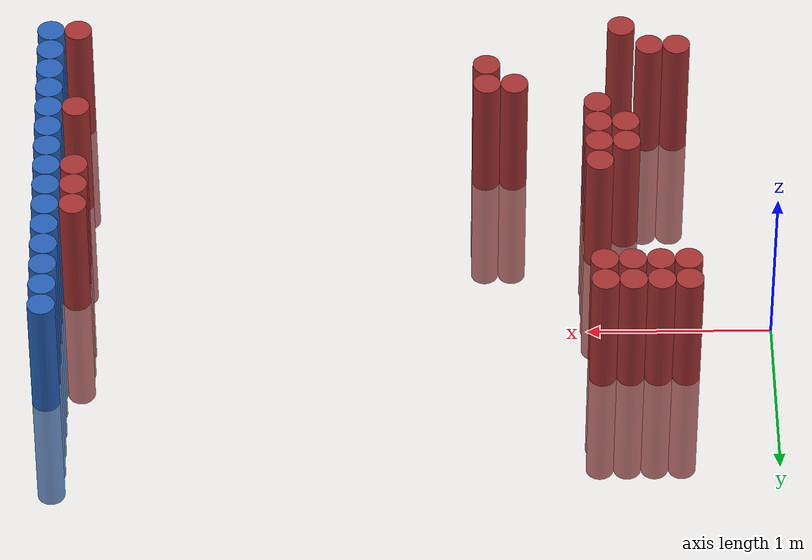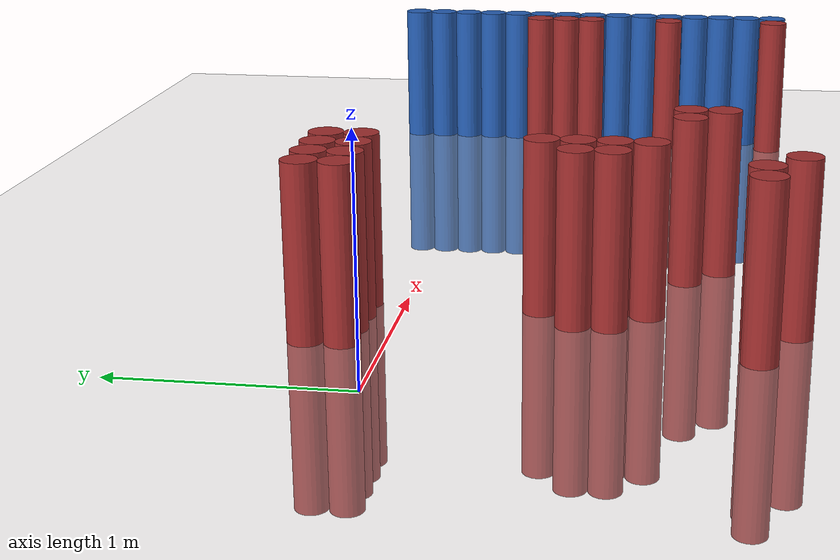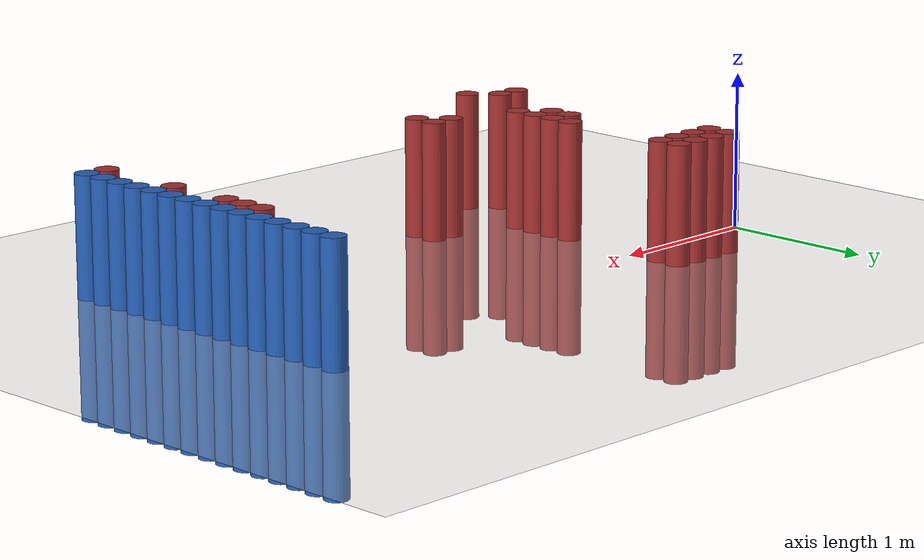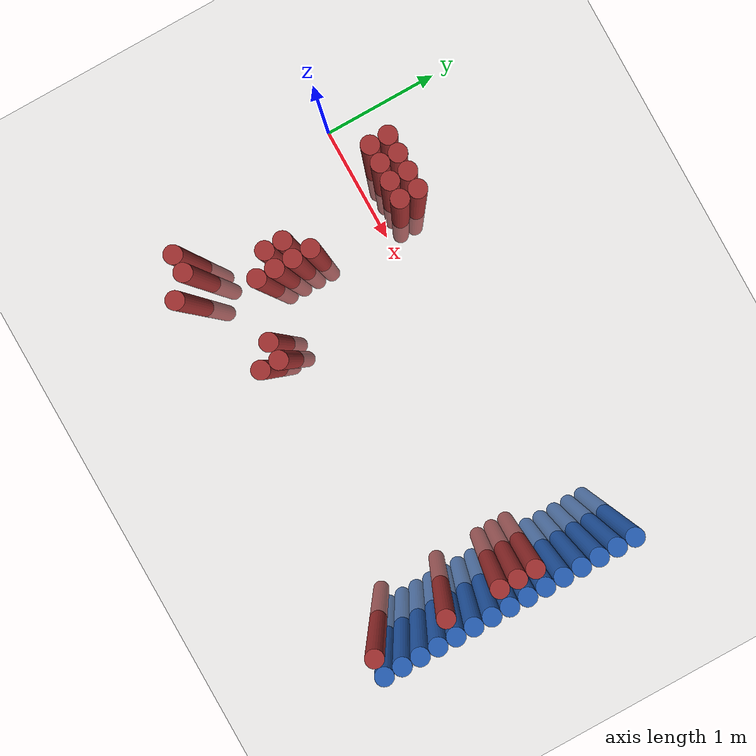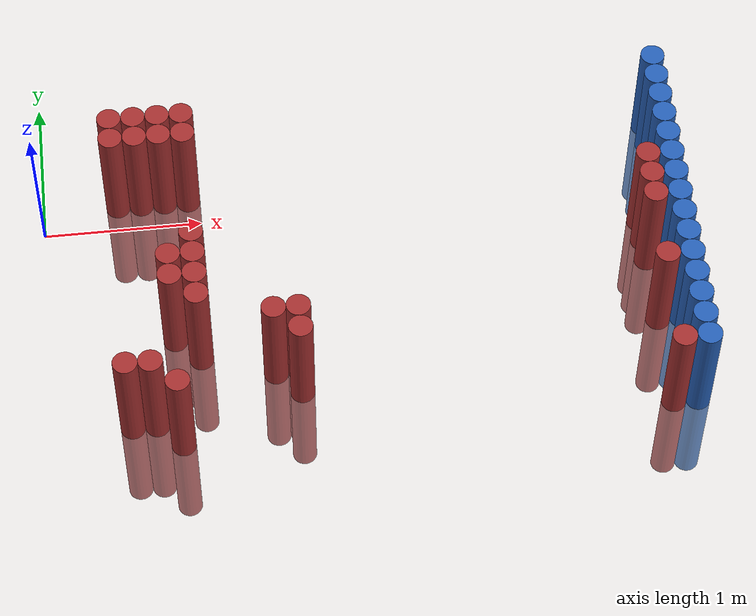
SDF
<sdf version="1.6">
 <world name="default">
  <model name="ground_plane">
   <static>1</static>
   <link name="link">
    <collision name="collision">
     <geometry><plane><normal>0 0 1</normal><size>100 100</size></plane></geometry>
     <surface><friction><ode><mu>100</mu><mu2>50</mu2></ode></friction></surface>
    </collision>
    <visual name="visual">
     <cast_shadows>0</cast_shadows>
     <geometry><plane><normal>0 0 1</normal><size>100 100</size></plane></geometry>
     <material>
      <script><uri>file://media/materials/scripts/gazebo.material</uri><name>Gazebo/Grey</name></script>
     </material>
    </visual>
   </link>
  </model>
  <model name="unit_cylinder_92">
   <static>1</static>
   <pose>3.925000 -1.625000 0.000000 0.000000 0.000000 0.000000</pose>
   <link name="link">
    <inertial>
     <mass>1</mass>
     <inertia><ixx>0.145833</ixx><ixy>0</ixy><ixz>0</ixz><iyy>0.145833</iyy><iyz>0</iyz><izz>0.125</izz></inertia>
    </inertial>
    <collision name="collision">
     <geometry><cylinder><radius>0.075000</radius><length>1.5</length></cylinder></geometry>
    </collision>
    <visual name="visual">
     <geometry><cylinder><radius>0.075000</radius><length>1.5</length></cylinder></geometry>
     <material>
      <ambient>0.152000 0.379000 0.720000 1</ambient>
      <diffuse>0.152000 0.379000 0.720000 1</diffuse>
     </material>
     <material>
      <script><name>Gazebo/Grey</name><uri>file://media/materials/scripts/gazebo.material</uri></script>
     </material>
    </visual>
   </link>
  </model>
  <model name="unit_cylinder_94">
   <static>1</static>
   <pose>3.925000 -1.475000 0.000000 0.000000 0.000000 0.000000</pose>
   <link name="link">
    <inertial>
     <mass>1</mass>
     <inertia><ixx>0.145833</ixx><ixy>0</ixy><ixz>0</ixz><iyy>0.145833</iyy><iyz>0</iyz><izz>0.125</izz></inertia>
    </inertial>
    <collision name="collision">
     <geometry><cylinder><radius>0.075000</radius><length>1.5</length></cylinder></geometry>
    </collision>
    <visual name="visual">
     <geometry><cylinder><radius>0.075000</radius><length>1.5</length></cylinder></geometry>
     <material>
      <ambient>0.152000 0.379000 0.720000 1</ambient>
      <diffuse>0.152000 0.379000 0.720000 1</diffuse>
     </material>
     <material>
      <script><name>Gazebo/Grey</name><uri>file://media/materials/scripts/gazebo.material</uri></script>
     </material>
    </visual>
   </link>
  </model>
  <model name="unit_cylinder_96">
   <static>1</static>
   <pose>3.925000 -1.325000 0.000000 0.000000 0.000000 0.000000</pose>
   <link name="link">
    <inertial>
     <mass>1</mass>
     <inertia><ixx>0.145833</ixx><ixy>0</ixy><ixz>0</ixz><iyy>0.145833</iyy><iyz>0</iyz><izz>0.125</izz></inertia>
    </inertial>
    <collision name="collision">
     <geometry><cylinder><radius>0.075000</radius><length>1.5</length></cylinder></geometry>
    </collision>
    <visual name="visual">
     <geometry><cylinder><radius>0.075000</radius><length>1.5</length></cylinder></geometry>
     <material>
      <ambient>0.152000 0.379000 0.720000 1</ambient>
      <diffuse>0.152000 0.379000 0.720000 1</diffuse>
     </material>
     <material>
      <script><name>Gazebo/Grey</name><uri>file://media/materials/scripts/gazebo.material</uri></script>
     </material>
    </visual>
   </link>
  </model>
  <model name="unit_cylinder_98">
   <static>1</static>
   <pose>3.925000 -1.175000 0.000000 0.000000 0.000000 0.000000</pose>
   <link name="link">
    <inertial>
     <mass>1</mass>
     <inertia><ixx>0.145833</ixx><ixy>0</ixy><ixz>0</ixz><iyy>0.145833</iyy><iyz>0</iyz><izz>0.125</izz></inertia>
    </inertial>
    <collision name="collision">
     <geometry><cylinder><radius>0.075000</radius><length>1.5</length></cylinder></geometry>
    </collision>
    <visual name="visual">
     <geometry><cylinder><radius>0.075000</radius><length>1.5</length></cylinder></geometry>
     <material>
      <ambient>0.152000 0.379000 0.720000 1</ambient>
      <diffuse>0.152000 0.379000 0.720000 1</diffuse>
     </material>
     <material>
      <script><name>Gazebo/Grey</name><uri>file://media/materials/scripts/gazebo.material</uri></script>
     </material>
    </visual>
   </link>
  </model>
  <model name="unit_cylinder_100">
   <static>1</static>
   <pose>3.925000 -1.025000 0.000000 0.000000 0.000000 0.000000</pose>
   <link name="link">
    <inertial>
     <mass>1</mass>
     <inertia><ixx>0.145833</ixx><ixy>0</ixy><ixz>0</ixz><iyy>0.145833</iyy><iyz>0</iyz><izz>0.125</izz></inertia>
    </inertial>
    <collision name="collision">
     <geometry><cylinder><radius>0.075000</radius><length>1.5</length></cylinder></geometry>
    </collision>
    <visual name="visual">
     <geometry><cylinder><radius>0.075000</radius><length>1.5</length></cylinder></geometry>
     <material>
      <ambient>0.152000 0.379000 0.720000 1</ambient>
      <diffuse>0.152000 0.379000 0.720000 1</diffuse>
     </material>
     <material>
      <script><name>Gazebo/Grey</name><uri>file://media/materials/scripts/gazebo.material</uri></script>
     </material>
    </visual>
   </link>
  </model>
  <model name="unit_cylinder_102">
   <static>1</static>
   <pose>3.925000 -0.875000 0.000000 0.000000 0.000000 0.000000</pose>
   <link name="link">
    <inertial>
     <mass>1</mass>
     <inertia><ixx>0.145833</ixx><ixy>0</ixy><ixz>0</ixz><iyy>0.145833</iyy><iyz>0</iyz><izz>0.125</izz></inertia>
    </inertial>
    <collision name="collision">
     <geometry><cylinder><radius>0.075000</radius><length>1.5</length></cylinder></geometry>
    </collision>
    <visual name="visual">
     <geometry><cylinder><radius>0.075000</radius><length>1.5</length></cylinder></geometry>
     <material>
      <ambient>0.152000 0.379000 0.720000 1</ambient>
      <diffuse>0.152000 0.379000 0.720000 1</diffuse>
     </material>
     <material>
      <script><name>Gazebo/Grey</name><uri>file://media/materials/scripts/gazebo.material</uri></script>
     </material>
    </visual>
   </link>
  </model>
  <model name="unit_cylinder_104">
   <static>1</static>
   <pose>3.925000 -0.725000 0.000000 0.000000 0.000000 0.000000</pose>
   <link name="link">
    <inertial>
     <mass>1</mass>
     <inertia><ixx>0.145833</ixx><ixy>0</ixy><ixz>0</ixz><iyy>0.145833</iyy><iyz>0</iyz><izz>0.125</izz></inertia>
    </inertial>
    <collision name="collision">
     <geometry><cylinder><radius>0.075000</radius><length>1.5</length></cylinder></geometry>
    </collision>
    <visual name="visual">
     <geometry><cylinder><radius>0.075000</radius><length>1.5</length></cylinder></geometry>
     <material>
      <ambient>0.152000 0.379000 0.720000 1</ambient>
      <diffuse>0.152000 0.379000 0.720000 1</diffuse>
     </material>
     <material>
      <script><name>Gazebo/Grey</name><uri>file://media/materials/scripts/gazebo.material</uri></script>
     </material>
    </visual>
   </link>
  </model>
  <model name="unit_cylinder_106">
   <static>1</static>
   <pose>3.925000 -0.575000 0.000000 0.000000 0.000000 0.000000</pose>
   <link name="link">
    <inertial>
     <mass>1</mass>
     <inertia><ixx>0.145833</ixx><ixy>0</ixy><ixz>0</ixz><iyy>0.145833</iyy><iyz>0</iyz><izz>0.125</izz></inertia>
    </inertial>
    <collision name="collision">
     <geometry><cylinder><radius>0.075000</radius><length>1.5</length></cylinder></geometry>
    </collision>
    <visual name="visual">
     <geometry><cylinder><radius>0.075000</radius><length>1.5</length></cylinder></geometry>
     <material>
      <ambient>0.152000 0.379000 0.720000 1</ambient>
      <diffuse>0.152000 0.379000 0.720000 1</diffuse>
     </material>
     <material>
      <script><name>Gazebo/Grey</name><uri>file://media/materials/scripts/gazebo.material</uri></script>
     </material>
    </visual>
   </link>
  </model>
  <model name="unit_cylinder_108">
   <static>1</static>
   <pose>3.925000 -0.425000 0.000000 0.000000 0.000000 0.000000</pose>
   <link name="link">
    <inertial>
     <mass>1</mass>
     <inertia><ixx>0.145833</ixx><ixy>0</ixy><ixz>0</ixz><iyy>0.145833</iyy><iyz>0</iyz><izz>0.125</izz></inertia>
    </inertial>
    <collision name="collision">
     <geometry><cylinder><radius>0.075000</radius><length>1.5</length></cylinder></geometry>
    </collision>
    <visual name="visual">
     <geometry><cylinder><radius>0.075000</radius><length>1.5</length></cylinder></geometry>
     <material>
      <ambient>0.152000 0.379000 0.720000 1</ambient>
      <diffuse>0.152000 0.379000 0.720000 1</diffuse>
     </material>
     <material>
      <script><name>Gazebo/Grey</name><uri>file://media/materials/scripts/gazebo.material</uri></script>
     </material>
    </visual>
   </link>
  </model>
  <model name="unit_cylinder_110">
   <static>1</static>
   <pose>3.925000 -0.275000 0.000000 0.000000 0.000000 0.000000</pose>
   <link name="link">
    <inertial>
     <mass>1</mass>
     <inertia><ixx>0.145833</ixx><ixy>0</ixy><ixz>0</ixz><iyy>0.145833</iyy><iyz>0</iyz><izz>0.125</izz></inertia>
    </inertial>
    <collision name="collision">
     <geometry><cylinder><radius>0.075000</radius><length>1.5</length></cylinder></geometry>
    </collision>
    <visual name="visual">
     <geometry><cylinder><radius>0.075000</radius><length>1.5</length></cylinder></geometry>
     <material>
      <ambient>0.152000 0.379000 0.720000 1</ambient>
      <diffuse>0.152000 0.379000 0.720000 1</diffuse>
     </material>
     <material>
      <script><name>Gazebo/Grey</name><uri>file://media/materials/scripts/gazebo.material</uri></script>
     </material>
    </visual>
   </link>
  </model>
  <model name="unit_cylinder_112">
   <static>1</static>
   <pose>3.925000 -0.125000 0.000000 0.000000 0.000000 0.000000</pose>
   <link name="link">
    <inertial>
     <mass>1</mass>
     <inertia><ixx>0.145833</ixx><ixy>0</ixy><ixz>0</ixz><iyy>0.145833</iyy><iyz>0</iyz><izz>0.125</izz></inertia>
    </inertial>
    <collision name="collision">
     <geometry><cylinder><radius>0.075000</radius><length>1.5</length></cylinder></geometry>
    </collision>
    <visual name="visual">
     <geometry><cylinder><radius>0.075000</radius><length>1.5</length></cylinder></geometry>
     <material>
      <ambient>0.152000 0.379000 0.720000 1</ambient>
      <diffuse>0.152000 0.379000 0.720000 1</diffuse>
     </material>
     <material>
      <script><name>Gazebo/Grey</name><uri>file://media/materials/scripts/gazebo.material</uri></script>
     </material>
    </visual>
   </link>
  </model>
  <model name="unit_cylinder_114">
   <static>1</static>
   <pose>3.925000 0.025000 0.000000 0.000000 0.000000 0.000000</pose>
   <link name="link">
    <inertial>
     <mass>1</mass>
     <inertia><ixx>0.145833</ixx><ixy>0</ixy><ixz>0</ixz><iyy>0.145833</iyy><iyz>0</iyz><izz>0.125</izz></inertia>
    </inertial>
    <collision name="collision">
     <geometry><cylinder><radius>0.075000</radius><length>1.5</length></cylinder></geometry>
    </collision>
    <visual name="visual">
     <geometry><cylinder><radius>0.075000</radius><length>1.5</length></cylinder></geometry>
     <material>
      <ambient>0.152000 0.379000 0.720000 1</ambient>
      <diffuse>0.152000 0.379000 0.720000 1</diffuse>
     </material>
     <material>
      <script><name>Gazebo/Grey</name><uri>file://media/materials/scripts/gazebo.material</uri></script>
     </material>
    </visual>
   </link>
  </model>
  <model name="unit_cylinder_116">
   <static>1</static>
   <pose>3.925000 0.175000 0.000000 0.000000 0.000000 0.000000</pose>
   <link name="link">
    <inertial>
     <mass>1</mass>
     <inertia><ixx>0.145833</ixx><ixy>0</ixy><ixz>0</ixz><iyy>0.145833</iyy><iyz>0</iyz><izz>0.125</izz></inertia>
    </inertial>
    <collision name="collision">
     <geometry><cylinder><radius>0.075000</radius><length>1.5</length></cylinder></geometry>
    </collision>
    <visual name="visual">
     <geometry><cylinder><radius>0.075000</radius><length>1.5</length></cylinder></geometry>
     <material>
      <ambient>0.152000 0.379000 0.720000 1</ambient>
      <diffuse>0.152000 0.379000 0.720000 1</diffuse>
     </material>
     <material>
      <script><name>Gazebo/Grey</name><uri>file://media/materials/scripts/gazebo.material</uri></script>
     </material>
    </visual>
   </link>
  </model>
  <model name="unit_cylinder_118">
   <static>1</static>
   <pose>3.925000 0.325000 0.000000 0.000000 0.000000 0.000000</pose>
   <link name="link">
    <inertial>
     <mass>1</mass>
     <inertia><ixx>0.145833</ixx><ixy>0</ixy><ixz>0</ixz><iyy>0.145833</iyy><iyz>0</iyz><izz>0.125</izz></inertia>
    </inertial>
    <collision name="collision">
     <geometry><cylinder><radius>0.075000</radius><length>1.5</length></cylinder></geometry>
    </collision>
    <visual name="visual">
     <geometry><cylinder><radius>0.075000</radius><length>1.5</length></cylinder></geometry>
     <material>
      <ambient>0.152000 0.379000 0.720000 1</ambient>
      <diffuse>0.152000 0.379000 0.720000 1</diffuse>
     </material>
     <material>
      <script><name>Gazebo/Grey</name><uri>file://media/materials/scripts/gazebo.material</uri></script>
     </material>
    </visual>
   </link>
  </model>
  <model name="unit_cylinder_120">
   <static>1</static>
   <pose>3.925000 0.475000 0.000000 0.000000 0.000000 0.000000</pose>
   <link name="link">
    <inertial>
     <mass>1</mass>
     <inertia><ixx>0.145833</ixx><ixy>0</ixy><ixz>0</ixz><iyy>0.145833</iyy><iyz>0</iyz><izz>0.125</izz></inertia>
    </inertial>
    <collision name="collision">
     <geometry><cylinder><radius>0.075000</radius><length>1.5</length></cylinder></geometry>
    </collision>
    <visual name="visual">
     <geometry><cylinder><radius>0.075000</radius><length>1.5</length></cylinder></geometry>
     <material>
      <ambient>0.152000 0.379000 0.720000 1</ambient>
      <diffuse>0.152000 0.379000 0.720000 1</diffuse>
     </material>
     <material>
      <script><name>Gazebo/Grey</name><uri>file://media/materials/scripts/gazebo.material</uri></script>
     </material>
    </visual>
   </link>
  </model>
  <model name="unit_cylinder_338">
   <static>1</static>
   <pose>0.475000 -1.475000 0.000000 0.000000 0.000000 0.000000</pose>
   <link name="link">
    <inertial>
     <mass>1</mass>
     <inertia><ixx>0.145833</ixx><ixy>0</ixy><ixz>0</ixz><iyy>0.145833</iyy><iyz>0</iyz><izz>0.125</izz></inertia>
    </inertial>
    <collision name="collision">
     <geometry><cylinder><radius>0.075000</radius><length>1.5</length></cylinder></geometry>
    </collision>
    <visual name="visual">
     <geometry><cylinder><radius>0.075000</radius><length>1.5</length></cylinder></geometry>
     <material>
      <ambient>0.648000 0.192000 0.192000 1</ambient>
      <diffuse>0.648000 0.192000 0.192000 1</diffuse>
     </material>
     <material>
      <script><name>Gazebo/Grey</name><uri>file://media/materials/scripts/gazebo.material</uri></script>
     </material>
    </visual>
   </link>
  </model>
  <model name="unit_cylinder_339">
   <static>1</static>
   <pose>0.475000 0.175000 0.000000 0.000000 0.000000 0.000000</pose>
   <link name="link">
    <inertial>
     <mass>1</mass>
     <inertia><ixx>0.145833</ixx><ixy>0</ixy><ixz>0</ixz><iyy>0.145833</iyy><iyz>0</iyz><izz>0.125</izz></inertia>
    </inertial>
    <collision name="collision">
     <geometry><cylinder><radius>0.075000</radius><length>1.5</length></cylinder></geometry>
    </collision>
    <visual name="visual">
     <geometry><cylinder><radius>0.075000</radius><length>1.5</length></cylinder></geometry>
     <material>
      <ambient>0.648000 0.192000 0.192000 1</ambient>
      <diffuse>0.648000 0.192000 0.192000 1</diffuse>
     </material>
     <material>
      <script><name>Gazebo/Grey</name><uri>file://media/materials/scripts/gazebo.material</uri></script>
     </material>
    </visual>
   </link>
  </model>
  <model name="unit_cylinder_340">
   <static>1</static>
   <pose>0.475000 0.325000 0.000000 0.000000 0.000000 0.000000</pose>
   <link name="link">
    <inertial>
     <mass>1</mass>
     <inertia><ixx>0.145833</ixx><ixy>0</ixy><ixz>0</ixz><iyy>0.145833</iyy><iyz>0</iyz><izz>0.125</izz></inertia>
    </inertial>
    <collision name="collision">
     <geometry><cylinder><radius>0.075000</radius><length>1.5</length></cylinder></geometry>
    </collision>
    <visual name="visual">
     <geometry><cylinder><radius>0.075000</radius><length>1.5</length></cylinder></geometry>
     <material>
      <ambient>0.648000 0.192000 0.192000 1</ambient>
      <diffuse>0.648000 0.192000 0.192000 1</diffuse>
     </material>
     <material>
      <script><name>Gazebo/Grey</name><uri>file://media/materials/scripts/gazebo.material</uri></script>
     </material>
    </visual>
   </link>
  </model>
  <model name="unit_cylinder_354">
   <static>1</static>
   <pose>0.625000 -1.475000 0.000000 0.000000 0.000000 0.000000</pose>
   <link name="link">
    <inertial>
     <mass>1</mass>
     <inertia><ixx>0.145833</ixx><ixy>0</ixy><ixz>0</ixz><iyy>0.145833</iyy><iyz>0</iyz><izz>0.125</izz></inertia>
    </inertial>
    <collision name="collision">
     <geometry><cylinder><radius>0.075000</radius><length>1.5</length></cylinder></geometry>
    </collision>
    <visual name="visual">
     <geometry><cylinder><radius>0.075000</radius><length>1.5</length></cylinder></geometry>
     <material>
      <ambient>0.648000 0.192000 0.192000 1</ambient>
      <diffuse>0.648000 0.192000 0.192000 1</diffuse>
     </material>
     <material>
      <script><name>Gazebo/Grey</name><uri>file://media/materials/scripts/gazebo.material</uri></script>
     </material>
    </visual>
   </link>
  </model>
  <model name="unit_cylinder_355">
   <static>1</static>
   <pose>0.625000 0.175000 0.000000 0.000000 0.000000 0.000000</pose>
   <link name="link">
    <inertial>
     <mass>1</mass>
     <inertia><ixx>0.145833</ixx><ixy>0</ixy><ixz>0</ixz><iyy>0.145833</iyy><iyz>0</iyz><izz>0.125</izz></inertia>
    </inertial>
    <collision name="collision">
     <geometry><cylinder><radius>0.075000</radius><length>1.5</length></cylinder></geometry>
    </collision>
    <visual name="visual">
     <geometry><cylinder><radius>0.075000</radius><length>1.5</length></cylinder></geometry>
     <material>
      <ambient>0.648000 0.192000 0.192000 1</ambient>
      <diffuse>0.648000 0.192000 0.192000 1</diffuse>
     </material>
     <material>
      <script><name>Gazebo/Grey</name><uri>file://media/materials/scripts/gazebo.material</uri></script>
     </material>
    </visual>
   </link>
  </model>
  <model name="unit_cylinder_356">
   <static>1</static>
   <pose>0.625000 0.325000 0.000000 0.000000 0.000000 0.000000</pose>
   <link name="link">
    <inertial>
     <mass>1</mass>
     <inertia><ixx>0.145833</ixx><ixy>0</ixy><ixz>0</ixz><iyy>0.145833</iyy><iyz>0</iyz><izz>0.125</izz></inertia>
    </inertial>
    <collision name="collision">
     <geometry><cylinder><radius>0.075000</radius><length>1.5</length></cylinder></geometry>
    </collision>
    <visual name="visual">
     <geometry><cylinder><radius>0.075000</radius><length>1.5</length></cylinder></geometry>
     <material>
      <ambient>0.648000 0.192000 0.192000 1</ambient>
      <diffuse>0.648000 0.192000 0.192000 1</diffuse>
     </material>
     <material>
      <script><name>Gazebo/Grey</name><uri>file://media/materials/scripts/gazebo.material</uri></script>
     </material>
    </visual>
   </link>
  </model>
  <model name="unit_cylinder_366">
   <static>1</static>
   <pose>0.775000 -1.625000 0.000000 0.000000 0.000000 0.000000</pose>
   <link name="link">
    <inertial>
     <mass>1</mass>
     <inertia><ixx>0.145833</ixx><ixy>0</ixy><ixz>0</ixz><iyy>0.145833</iyy><iyz>0</iyz><izz>0.125</izz></inertia>
    </inertial>
    <collision name="collision">
     <geometry><cylinder><radius>0.075000</radius><length>1.5</length></cylinder></geometry>
    </collision>
    <visual name="visual">
     <geometry><cylinder><radius>0.075000</radius><length>1.5</length></cylinder></geometry>
     <material>
      <ambient>0.648000 0.192000 0.192000 1</ambient>
      <diffuse>0.648000 0.192000 0.192000 1</diffuse>
     </material>
     <material>
      <script><name>Gazebo/Grey</name><uri>file://media/materials/scripts/gazebo.material</uri></script>
     </material>
    </visual>
   </link>
  </model>
  <model name="unit_cylinder_367">
   <static>1</static>
   <pose>0.775000 -0.875000 0.000000 0.000000 0.000000 0.000000</pose>
   <link name="link">
    <inertial>
     <mass>1</mass>
     <inertia><ixx>0.145833</ixx><ixy>0</ixy><ixz>0</ixz><iyy>0.145833</iyy><iyz>0</iyz><izz>0.125</izz></inertia>
    </inertial>
    <collision name="collision">
     <geometry><cylinder><radius>0.075000</radius><length>1.5</length></cylinder></geometry>
    </collision>
    <visual name="visual">
     <geometry><cylinder><radius>0.075000</radius><length>1.5</length></cylinder></geometry>
     <material>
      <ambient>0.648000 0.192000 0.192000 1</ambient>
      <diffuse>0.648000 0.192000 0.192000 1</diffuse>
     </material>
     <material>
      <script><name>Gazebo/Grey</name><uri>file://media/materials/scripts/gazebo.material</uri></script>
     </material>
    </visual>
   </link>
  </model>
  <model name="unit_cylinder_368">
   <static>1</static>
   <pose>0.775000 -0.725000 0.000000 0.000000 0.000000 0.000000</pose>
   <link name="link">
    <inertial>
     <mass>1</mass>
     <inertia><ixx>0.145833</ixx><ixy>0</ixy><ixz>0</ixz><iyy>0.145833</iyy><iyz>0</iyz><izz>0.125</izz></inertia>
    </inertial>
    <collision name="collision">
     <geometry><cylinder><radius>0.075000</radius><length>1.5</length></cylinder></geometry>
    </collision>
    <visual name="visual">
     <geometry><cylinder><radius>0.075000</radius><length>1.5</length></cylinder></geometry>
     <material>
      <ambient>0.648000 0.192000 0.192000 1</ambient>
      <diffuse>0.648000 0.192000 0.192000 1</diffuse>
     </material>
     <material>
      <script><name>Gazebo/Grey</name><uri>file://media/materials/scripts/gazebo.material</uri></script>
     </material>
    </visual>
   </link>
  </model>
  <model name="unit_cylinder_369">
   <static>1</static>
   <pose>0.775000 0.175000 0.000000 0.000000 0.000000 0.000000</pose>
   <link name="link">
    <inertial>
     <mass>1</mass>
     <inertia><ixx>0.145833</ixx><ixy>0</ixy><ixz>0</ixz><iyy>0.145833</iyy><iyz>0</iyz><izz>0.125</izz></inertia>
    </inertial>
    <collision name="collision">
     <geometry><cylinder><radius>0.075000</radius><length>1.5</length></cylinder></geometry>
    </collision>
    <visual name="visual">
     <geometry><cylinder><radius>0.075000</radius><length>1.5</length></cylinder></geometry>
     <material>
      <ambient>0.648000 0.192000 0.192000 1</ambient>
      <diffuse>0.648000 0.192000 0.192000 1</diffuse>
     </material>
     <material>
      <script><name>Gazebo/Grey</name><uri>file://media/materials/scripts/gazebo.material</uri></script>
     </material>
    </visual>
   </link>
  </model>
  <model name="unit_cylinder_370">
   <static>1</static>
   <pose>0.775000 0.325000 0.000000 0.000000 0.000000 0.000000</pose>
   <link name="link">
    <inertial>
     <mass>1</mass>
     <inertia><ixx>0.145833</ixx><ixy>0</ixy><ixz>0</ixz><iyy>0.145833</iyy><iyz>0</iyz><izz>0.125</izz></inertia>
    </inertial>
    <collision name="collision">
     <geometry><cylinder><radius>0.075000</radius><length>1.5</length></cylinder></geometry>
    </collision>
    <visual name="visual">
     <geometry><cylinder><radius>0.075000</radius><length>1.5</length></cylinder></geometry>
     <material>
      <ambient>0.648000 0.192000 0.192000 1</ambient>
      <diffuse>0.648000 0.192000 0.192000 1</diffuse>
     </material>
     <material>
      <script><name>Gazebo/Grey</name><uri>file://media/materials/scripts/gazebo.material</uri></script>
     </material>
    </visual>
   </link>
  </model>
  <model name="unit_cylinder_374">
   <static>1</static>
   <pose>0.925000 -1.025000 0.000000 0.000000 0.000000 0.000000</pose>
   <link name="link">
    <inertial>
     <mass>1</mass>
     <inertia><ixx>0.145833</ixx><ixy>0</ixy><ixz>0</ixz><iyy>0.145833</iyy><iyz>0</iyz><izz>0.125</izz></inertia>
    </inertial>
    <collision name="collision">
     <geometry><cylinder><radius>0.075000</radius><length>1.5</length></cylinder></geometry>
    </collision>
    <visual name="visual">
     <geometry><cylinder><radius>0.075000</radius><length>1.5</length></cylinder></geometry>
     <material>
      <ambient>0.648000 0.192000 0.192000 1</ambient>
      <diffuse>0.648000 0.192000 0.192000 1</diffuse>
     </material>
     <material>
      <script><name>Gazebo/Grey</name><uri>file://media/materials/scripts/gazebo.material</uri></script>
     </material>
    </visual>
   </link>
  </model>
  <model name="unit_cylinder_375">
   <static>1</static>
   <pose>0.925000 -0.875000 0.000000 0.000000 0.000000 0.000000</pose>
   <link name="link">
    <inertial>
     <mass>1</mass>
     <inertia><ixx>0.145833</ixx><ixy>0</ixy><ixz>0</ixz><iyy>0.145833</iyy><iyz>0</iyz><izz>0.125</izz></inertia>
    </inertial>
    <collision name="collision">
     <geometry><cylinder><radius>0.075000</radius><length>1.5</length></cylinder></geometry>
    </collision>
    <visual name="visual">
     <geometry><cylinder><radius>0.075000</radius><length>1.5</length></cylinder></geometry>
     <material>
      <ambient>0.648000 0.192000 0.192000 1</ambient>
      <diffuse>0.648000 0.192000 0.192000 1</diffuse>
     </material>
     <material>
      <script><name>Gazebo/Grey</name><uri>file://media/materials/scripts/gazebo.material</uri></script>
     </material>
    </visual>
   </link>
  </model>
  <model name="unit_cylinder_376">
   <static>1</static>
   <pose>0.925000 -0.725000 0.000000 0.000000 0.000000 0.000000</pose>
   <link name="link">
    <inertial>
     <mass>1</mass>
     <inertia><ixx>0.145833</ixx><ixy>0</ixy><ixz>0</ixz><iyy>0.145833</iyy><iyz>0</iyz><izz>0.125</izz></inertia>
    </inertial>
    <collision name="collision">
     <geometry><cylinder><radius>0.075000</radius><length>1.5</length></cylinder></geometry>
    </collision>
    <visual name="visual">
     <geometry><cylinder><radius>0.075000</radius><length>1.5</length></cylinder></geometry>
     <material>
      <ambient>0.648000 0.192000 0.192000 1</ambient>
      <diffuse>0.648000 0.192000 0.192000 1</diffuse>
     </material>
     <material>
      <script><name>Gazebo/Grey</name><uri>file://media/materials/scripts/gazebo.material</uri></script>
     </material>
    </visual>
   </link>
  </model>
  <model name="unit_cylinder_377">
   <static>1</static>
   <pose>0.925000 -0.575000 0.000000 0.000000 0.000000 0.000000</pose>
   <link name="link">
    <inertial>
     <mass>1</mass>
     <inertia><ixx>0.145833</ixx><ixy>0</ixy><ixz>0</ixz><iyy>0.145833</iyy><iyz>0</iyz><izz>0.125</izz></inertia>
    </inertial>
    <collision name="collision">
     <geometry><cylinder><radius>0.075000</radius><length>1.5</length></cylinder></geometry>
    </collision>
    <visual name="visual">
     <geometry><cylinder><radius>0.075000</radius><length>1.5</length></cylinder></geometry>
     <material>
      <ambient>0.648000 0.192000 0.192000 1</ambient>
      <diffuse>0.648000 0.192000 0.192000 1</diffuse>
     </material>
     <material>
      <script><name>Gazebo/Grey</name><uri>file://media/materials/scripts/gazebo.material</uri></script>
     </material>
    </visual>
   </link>
  </model>
  <model name="unit_cylinder_378">
   <static>1</static>
   <pose>0.925000 0.175000 0.000000 0.000000 0.000000 0.000000</pose>
   <link name="link">
    <inertial>
     <mass>1</mass>
     <inertia><ixx>0.145833</ixx><ixy>0</ixy><ixz>0</ixz><iyy>0.145833</iyy><iyz>0</iyz><izz>0.125</izz></inertia>
    </inertial>
    <collision name="collision">
     <geometry><cylinder><radius>0.075000</radius><length>1.5</length></cylinder></geometry>
    </collision>
    <visual name="visual">
     <geometry><cylinder><radius>0.075000</radius><length>1.5</length></cylinder></geometry>
     <material>
      <ambient>0.648000 0.192000 0.192000 1</ambient>
      <diffuse>0.648000 0.192000 0.192000 1</diffuse>
     </material>
     <material>
      <script><name>Gazebo/Grey</name><uri>file://media/materials/scripts/gazebo.material</uri></script>
     </material>
    </visual>
   </link>
  </model>
  <model name="unit_cylinder_379">
   <static>1</static>
   <pose>0.925000 0.325000 0.000000 0.000000 0.000000 0.000000</pose>
   <link name="link">
    <inertial>
     <mass>1</mass>
     <inertia><ixx>0.145833</ixx><ixy>0</ixy><ixz>0</ixz><iyy>0.145833</iyy><iyz>0</iyz><izz>0.125</izz></inertia>
    </inertial>
    <collision name="collision">
     <geometry><cylinder><radius>0.075000</radius><length>1.5</length></cylinder></geometry>
    </collision>
    <visual name="visual">
     <geometry><cylinder><radius>0.075000</radius><length>1.5</length></cylinder></geometry>
     <material>
      <ambient>0.648000 0.192000 0.192000 1</ambient>
      <diffuse>0.648000 0.192000 0.192000 1</diffuse>
     </material>
     <material>
      <script><name>Gazebo/Grey</name><uri>file://media/materials/scripts/gazebo.material</uri></script>
     </material>
    </visual>
   </link>
  </model>
  <model name="unit_cylinder_388">
   <static>1</static>
   <pose>1.375000 -1.175000 0.000000 0.000000 0.000000 0.000000</pose>
   <link name="link">
    <inertial>
     <mass>1</mass>
     <inertia><ixx>0.145833</ixx><ixy>0</ixy><ixz>0</ixz><iyy>0.145833</iyy><iyz>0</iyz><izz>0.125</izz></inertia>
    </inertial>
    <collision name="collision">
     <geometry><cylinder><radius>0.075000</radius><length>1.5</length></cylinder></geometry>
    </collision>
    <visual name="visual">
     <geometry><cylinder><radius>0.075000</radius><length>1.5</length></cylinder></geometry>
     <material>
      <ambient>0.648000 0.192000 0.192000 1</ambient>
      <diffuse>0.648000 0.192000 0.192000 1</diffuse>
     </material>
     <material>
      <script><name>Gazebo/Grey</name><uri>file://media/materials/scripts/gazebo.material</uri></script>
     </material>
    </visual>
   </link>
  </model>
  <model name="unit_cylinder_393">
   <static>1</static>
   <pose>1.525000 -1.325000 0.000000 0.000000 0.000000 0.000000</pose>
   <link name="link">
    <inertial>
     <mass>1</mass>
     <inertia><ixx>0.145833</ixx><ixy>0</ixy><ixz>0</ixz><iyy>0.145833</iyy><iyz>0</iyz><izz>0.125</izz></inertia>
    </inertial>
    <collision name="collision">
     <geometry><cylinder><radius>0.075000</radius><length>1.5</length></cylinder></geometry>
    </collision>
    <visual name="visual">
     <geometry><cylinder><radius>0.075000</radius><length>1.5</length></cylinder></geometry>
     <material>
      <ambient>0.648000 0.192000 0.192000 1</ambient>
      <diffuse>0.648000 0.192000 0.192000 1</diffuse>
     </material>
     <material>
      <script><name>Gazebo/Grey</name><uri>file://media/materials/scripts/gazebo.material</uri></script>
     </material>
    </visual>
   </link>
  </model>
  <model name="unit_cylinder_394">
   <static>1</static>
   <pose>1.525000 -1.175000 0.000000 0.000000 0.000000 0.000000</pose>
   <link name="link">
    <inertial>
     <mass>1</mass>
     <inertia><ixx>0.145833</ixx><ixy>0</ixy><ixz>0</ixz><iyy>0.145833</iyy><iyz>0</iyz><izz>0.125</izz></inertia>
    </inertial>
    <collision name="collision">
     <geometry><cylinder><radius>0.075000</radius><length>1.5</length></cylinder></geometry>
    </collision>
    <visual name="visual">
     <geometry><cylinder><radius>0.075000</radius><length>1.5</length></cylinder></geometry>
     <material>
      <ambient>0.648000 0.192000 0.192000 1</ambient>
      <diffuse>0.648000 0.192000 0.192000 1</diffuse>
     </material>
     <material>
      <script><name>Gazebo/Grey</name><uri>file://media/materials/scripts/gazebo.material</uri></script>
     </material>
    </visual>
   </link>
  </model>
  <model name="unit_cylinder_422">
   <static>1</static>
   <pose>3.775000 -1.625000 0.000000 0.000000 0.000000 0.000000</pose>
   <link name="link">
    <inertial>
     <mass>1</mass>
     <inertia><ixx>0.145833</ixx><ixy>0</ixy><ixz>0</ixz><iyy>0.145833</iyy><iyz>0</iyz><izz>0.125</izz></inertia>
    </inertial>
    <collision name="collision">
     <geometry><cylinder><radius>0.075000</radius><length>1.5</length></cylinder></geometry>
    </collision>
    <visual name="visual">
     <geometry><cylinder><radius>0.075000</radius><length>1.5</length></cylinder></geometry>
     <material>
      <ambient>0.648000 0.192000 0.192000 1</ambient>
      <diffuse>0.648000 0.192000 0.192000 1</diffuse>
     </material>
     <material>
      <script><name>Gazebo/Grey</name><uri>file://media/materials/scripts/gazebo.material</uri></script>
     </material>
    </visual>
   </link>
  </model>
  <model name="unit_cylinder_423">
   <static>1</static>
   <pose>3.775000 -1.025000 0.000000 0.000000 0.000000 0.000000</pose>
   <link name="link">
    <inertial>
     <mass>1</mass>
     <inertia><ixx>0.145833</ixx><ixy>0</ixy><ixz>0</ixz><iyy>0.145833</iyy><iyz>0</iyz><izz>0.125</izz></inertia>
    </inertial>
    <collision name="collision">
     <geometry><cylinder><radius>0.075000</radius><length>1.5</length></cylinder></geometry>
    </collision>
    <visual name="visual">
     <geometry><cylinder><radius>0.075000</radius><length>1.5</length></cylinder></geometry>
     <material>
      <ambient>0.648000 0.192000 0.192000 1</ambient>
      <diffuse>0.648000 0.192000 0.192000 1</diffuse>
     </material>
     <material>
      <script><name>Gazebo/Grey</name><uri>file://media/materials/scripts/gazebo.material</uri></script>
     </material>
    </visual>
   </link>
  </model>
  <model name="unit_cylinder_424">
   <static>1</static>
   <pose>3.775000 -0.575000 0.000000 0.000000 0.000000 0.000000</pose>
   <link name="link">
    <inertial>
     <mass>1</mass>
     <inertia><ixx>0.145833</ixx><ixy>0</ixy><ixz>0</ixz><iyy>0.145833</iyy><iyz>0</iyz><izz>0.125</izz></inertia>
    </inertial>
    <collision name="collision">
     <geometry><cylinder><radius>0.075000</radius><length>1.5</length></cylinder></geometry>
    </collision>
    <visual name="visual">
     <geometry><cylinder><radius>0.075000</radius><length>1.5</length></cylinder></geometry>
     <material>
      <ambient>0.648000 0.192000 0.192000 1</ambient>
      <diffuse>0.648000 0.192000 0.192000 1</diffuse>
     </material>
     <material>
      <script><name>Gazebo/Grey</name><uri>file://media/materials/scripts/gazebo.material</uri></script>
     </material>
    </visual>
   </link>
  </model>
  <model name="unit_cylinder_425">
   <static>1</static>
   <pose>3.775000 -0.425000 0.000000 0.000000 0.000000 0.000000</pose>
   <link name="link">
    <inertial>
     <mass>1</mass>
     <inertia><ixx>0.145833</ixx><ixy>0</ixy><ixz>0</ixz><iyy>0.145833</iyy><iyz>0</iyz><izz>0.125</izz></inertia>
    </inertial>
    <collision name="collision">
     <geometry><cylinder><radius>0.075000</radius><length>1.5</length></cylinder></geometry>
    </collision>
    <visual name="visual">
     <geometry><cylinder><radius>0.075000</radius><length>1.5</length></cylinder></geometry>
     <material>
      <ambient>0.648000 0.192000 0.192000 1</ambient>
      <diffuse>0.648000 0.192000 0.192000 1</diffuse>
     </material>
     <material>
      <script><name>Gazebo/Grey</name><uri>file://media/materials/scripts/gazebo.material</uri></script>
     </material>
    </visual>
   </link>
  </model>
  <model name="unit_cylinder_426">
   <static>1</static>
   <pose>3.775000 -0.275000 0.000000 0.000000 0.000000 0.000000</pose>
   <link name="link">
    <inertial>
     <mass>1</mass>
     <inertia><ixx>0.145833</ixx><ixy>0</ixy><ixz>0</ixz><iyy>0.145833</iyy><iyz>0</iyz><izz>0.125</izz></inertia>
    </inertial>
    <collision name="collision">
     <geometry><cylinder><radius>0.075000</radius><length>1.5</length></cylinder></geometry>
    </collision>
    <visual name="visual">
     <geometry><cylinder><radius>0.075000</radius><length>1.5</length></cylinder></geometry>
     <material>
      <ambient>0.648000 0.192000 0.192000 1</ambient>
      <diffuse>0.648000 0.192000 0.192000 1</diffuse>
     </material>
     <material>
      <script><name>Gazebo/Grey</name><uri>file://media/materials/scripts/gazebo.material</uri></script>
     </material>
    </visual>
   </link>
  </model>
  <model name="unit_cylinder_442">
   <static>1</static>
   <pose>3.925000 -1.625000 0.000000 0.000000 0.000000 0.000000</pose>
   <link name="link">
    <inertial>
     <mass>1</mass>
     <inertia><ixx>0.145833</ixx><ixy>0</ixy><ixz>0</ixz><iyy>0.145833</iyy><iyz>0</iyz><izz>0.125</izz></inertia>
    </inertial>
    <collision name="collision">
     <geometry><cylinder><radius>0.075000</radius><length>1.5</length></cylinder></geometry>
    </collision>
    <visual name="visual">
     <geometry><cylinder><radius>0.075000</radius><length>1.5</length></cylinder></geometry>
     <material>
      <ambient>0.152000 0.379000 0.720000 1</ambient>
      <diffuse>0.152000 0.379000 0.720000 1</diffuse>
     </material>
     <material>
      <script><name>Gazebo/Grey</name><uri>file://media/materials/scripts/gazebo.material</uri></script>
     </material>
    </visual>
   </link>
  </model>
  <model name="unit_cylinder_443">
   <static>1</static>
   <pose>3.925000 -1.475000 0.000000 0.000000 0.000000 0.000000</pose>
   <link name="link">
    <inertial>
     <mass>1</mass>
     <inertia><ixx>0.145833</ixx><ixy>0</ixy><ixz>0</ixz><iyy>0.145833</iyy><iyz>0</iyz><izz>0.125</izz></inertia>
    </inertial>
    <collision name="collision">
     <geometry><cylinder><radius>0.075000</radius><length>1.5</length></cylinder></geometry>
    </collision>
    <visual name="visual">
     <geometry><cylinder><radius>0.075000</radius><length>1.5</length></cylinder></geometry>
     <material>
      <ambient>0.152000 0.379000 0.720000 1</ambient>
      <diffuse>0.152000 0.379000 0.720000 1</diffuse>
     </material>
     <material>
      <script><name>Gazebo/Grey</name><uri>file://media/materials/scripts/gazebo.material</uri></script>
     </material>
    </visual>
   </link>
  </model>
  <model name="unit_cylinder_444">
   <static>1</static>
   <pose>3.925000 -1.325000 0.000000 0.000000 0.000000 0.000000</pose>
   <link name="link">
    <inertial>
     <mass>1</mass>
     <inertia><ixx>0.145833</ixx><ixy>0</ixy><ixz>0</ixz><iyy>0.145833</iyy><iyz>0</iyz><izz>0.125</izz></inertia>
    </inertial>
    <collision name="collision">
     <geometry><cylinder><radius>0.075000</radius><length>1.5</length></cylinder></geometry>
    </collision>
    <visual name="visual">
     <geometry><cylinder><radius>0.075000</radius><length>1.5</length></cylinder></geometry>
     <material>
      <ambient>0.152000 0.379000 0.720000 1</ambient>
      <diffuse>0.152000 0.379000 0.720000 1</diffuse>
     </material>
     <material>
      <script><name>Gazebo/Grey</name><uri>file://media/materials/scripts/gazebo.material</uri></script>
     </material>
    </visual>
   </link>
  </model>
  <model name="unit_cylinder_445">
   <static>1</static>
   <pose>3.925000 -1.175000 0.000000 0.000000 0.000000 0.000000</pose>
   <link name="link">
    <inertial>
     <mass>1</mass>
     <inertia><ixx>0.145833</ixx><ixy>0</ixy><ixz>0</ixz><iyy>0.145833</iyy><iyz>0</iyz><izz>0.125</izz></inertia>
    </inertial>
    <collision name="collision">
     <geometry><cylinder><radius>0.075000</radius><length>1.5</length></cylinder></geometry>
    </collision>
    <visual name="visual">
     <geometry><cylinder><radius>0.075000</radius><length>1.5</length></cylinder></geometry>
     <material>
      <ambient>0.152000 0.379000 0.720000 1</ambient>
      <diffuse>0.152000 0.379000 0.720000 1</diffuse>
     </material>
     <material>
      <script><name>Gazebo/Grey</name><uri>file://media/materials/scripts/gazebo.material</uri></script>
     </material>
    </visual>
   </link>
  </model>
  <model name="unit_cylinder_446">
   <static>1</static>
   <pose>3.925000 -1.025000 0.000000 0.000000 0.000000 0.000000</pose>
   <link name="link">
    <inertial>
     <mass>1</mass>
     <inertia><ixx>0.145833</ixx><ixy>0</ixy><ixz>0</ixz><iyy>0.145833</iyy><iyz>0</iyz><izz>0.125</izz></inertia>
    </inertial>
    <collision name="collision">
     <geometry><cylinder><radius>0.075000</radius><length>1.5</length></cylinder></geometry>
    </collision>
    <visual name="visual">
     <geometry><cylinder><radius>0.075000</radius><length>1.5</length></cylinder></geometry>
     <material>
      <ambient>0.152000 0.379000 0.720000 1</ambient>
      <diffuse>0.152000 0.379000 0.720000 1</diffuse>
     </material>
     <material>
      <script><name>Gazebo/Grey</name><uri>file://media/materials/scripts/gazebo.material</uri></script>
     </material>
    </visual>
   </link>
  </model>
  <model name="unit_cylinder_447">
   <static>1</static>
   <pose>3.925000 -0.875000 0.000000 0.000000 0.000000 0.000000</pose>
   <link name="link">
    <inertial>
     <mass>1</mass>
     <inertia><ixx>0.145833</ixx><ixy>0</ixy><ixz>0</ixz><iyy>0.145833</iyy><iyz>0</iyz><izz>0.125</izz></inertia>
    </inertial>
    <collision name="collision">
     <geometry><cylinder><radius>0.075000</radius><length>1.5</length></cylinder></geometry>
    </collision>
    <visual name="visual">
     <geometry><cylinder><radius>0.075000</radius><length>1.5</length></cylinder></geometry>
     <material>
      <ambient>0.152000 0.379000 0.720000 1</ambient>
      <diffuse>0.152000 0.379000 0.720000 1</diffuse>
     </material>
     <material>
      <script><name>Gazebo/Grey</name><uri>file://media/materials/scripts/gazebo.material</uri></script>
     </material>
    </visual>
   </link>
  </model>
  <model name="unit_cylinder_448">
   <static>1</static>
   <pose>3.925000 -0.725000 0.000000 0.000000 0.000000 0.000000</pose>
   <link name="link">
    <inertial>
     <mass>1</mass>
     <inertia><ixx>0.145833</ixx><ixy>0</ixy><ixz>0</ixz><iyy>0.145833</iyy><iyz>0</iyz><izz>0.125</izz></inertia>
    </inertial>
    <collision name="collision">
     <geometry><cylinder><radius>0.075000</radius><length>1.5</length></cylinder></geometry>
    </collision>
    <visual name="visual">
     <geometry><cylinder><radius>0.075000</radius><length>1.5</length></cylinder></geometry>
     <material>
      <ambient>0.152000 0.379000 0.720000 1</ambient>
      <diffuse>0.152000 0.379000 0.720000 1</diffuse>
     </material>
     <material>
      <script><name>Gazebo/Grey</name><uri>file://media/materials/scripts/gazebo.material</uri></script>
     </material>
    </visual>
   </link>
  </model>
  <model name="unit_cylinder_449">
   <static>1</static>
   <pose>3.925000 -0.575000 0.000000 0.000000 0.000000 0.000000</pose>
   <link name="link">
    <inertial>
     <mass>1</mass>
     <inertia><ixx>0.145833</ixx><ixy>0</ixy><ixz>0</ixz><iyy>0.145833</iyy><iyz>0</iyz><izz>0.125</izz></inertia>
    </inertial>
    <collision name="collision">
     <geometry><cylinder><radius>0.075000</radius><length>1.5</length></cylinder></geometry>
    </collision>
    <visual name="visual">
     <geometry><cylinder><radius>0.075000</radius><length>1.5</length></cylinder></geometry>
     <material>
      <ambient>0.152000 0.379000 0.720000 1</ambient>
      <diffuse>0.152000 0.379000 0.720000 1</diffuse>
     </material>
     <material>
      <script><name>Gazebo/Grey</name><uri>file://media/materials/scripts/gazebo.material</uri></script>
     </material>
    </visual>
   </link>
  </model>
  <model name="unit_cylinder_450">
   <static>1</static>
   <pose>3.925000 -0.425000 0.000000 0.000000 0.000000 0.000000</pose>
   <link name="link">
    <inertial>
     <mass>1</mass>
     <inertia><ixx>0.145833</ixx><ixy>0</ixy><ixz>0</ixz><iyy>0.145833</iyy><iyz>0</iyz><izz>0.125</izz></inertia>
    </inertial>
    <collision name="collision">
     <geometry><cylinder><radius>0.075000</radius><length>1.5</length></cylinder></geometry>
    </collision>
    <visual name="visual">
     <geometry><cylinder><radius>0.075000</radius><length>1.5</length></cylinder></geometry>
     <material>
      <ambient>0.152000 0.379000 0.720000 1</ambient>
      <diffuse>0.152000 0.379000 0.720000 1</diffuse>
     </material>
     <material>
      <script><name>Gazebo/Grey</name><uri>file://media/materials/scripts/gazebo.material</uri></script>
     </material>
    </visual>
   </link>
  </model>
  <model name="unit_cylinder_451">
   <static>1</static>
   <pose>3.925000 -0.275000 0.000000 0.000000 0.000000 0.000000</pose>
   <link name="link">
    <inertial>
     <mass>1</mass>
     <inertia><ixx>0.145833</ixx><ixy>0</ixy><ixz>0</ixz><iyy>0.145833</iyy><iyz>0</iyz><izz>0.125</izz></inertia>
    </inertial>
    <collision name="collision">
     <geometry><cylinder><radius>0.075000</radius><length>1.5</length></cylinder></geometry>
    </collision>
    <visual name="visual">
     <geometry><cylinder><radius>0.075000</radius><length>1.5</length></cylinder></geometry>
     <material>
      <ambient>0.152000 0.379000 0.720000 1</ambient>
      <diffuse>0.152000 0.379000 0.720000 1</diffuse>
     </material>
     <material>
      <script><name>Gazebo/Grey</name><uri>file://media/materials/scripts/gazebo.material</uri></script>
     </material>
    </visual>
   </link>
  </model>
  <model name="unit_cylinder_452">
   <static>1</static>
   <pose>3.925000 -0.125000 0.000000 0.000000 0.000000 0.000000</pose>
   <link name="link">
    <inertial>
     <mass>1</mass>
     <inertia><ixx>0.145833</ixx><ixy>0</ixy><ixz>0</ixz><iyy>0.145833</iyy><iyz>0</iyz><izz>0.125</izz></inertia>
    </inertial>
    <collision name="collision">
     <geometry><cylinder><radius>0.075000</radius><length>1.5</length></cylinder></geometry>
    </collision>
    <visual name="visual">
     <geometry><cylinder><radius>0.075000</radius><length>1.5</length></cylinder></geometry>
     <material>
      <ambient>0.152000 0.379000 0.720000 1</ambient>
      <diffuse>0.152000 0.379000 0.720000 1</diffuse>
     </material>
     <material>
      <script><name>Gazebo/Grey</name><uri>file://media/materials/scripts/gazebo.material</uri></script>
     </material>
    </visual>
   </link>
  </model>
  <model name="unit_cylinder_453">
   <static>1</static>
   <pose>3.925000 0.025000 0.000000 0.000000 0.000000 0.000000</pose>
   <link name="link">
    <inertial>
     <mass>1</mass>
     <inertia><ixx>0.145833</ixx><ixy>0</ixy><ixz>0</ixz><iyy>0.145833</iyy><iyz>0</iyz><izz>0.125</izz></inertia>
    </inertial>
    <collision name="collision">
     <geometry><cylinder><radius>0.075000</radius><length>1.5</length></cylinder></geometry>
    </collision>
    <visual name="visual">
     <geometry><cylinder><radius>0.075000</radius><length>1.5</length></cylinder></geometry>
     <material>
      <ambient>0.152000 0.379000 0.720000 1</ambient>
      <diffuse>0.152000 0.379000 0.720000 1</diffuse>
     </material>
     <material>
      <script><name>Gazebo/Grey</name><uri>file://media/materials/scripts/gazebo.material</uri></script>
     </material>
    </visual>
   </link>
  </model>
  <model name="unit_cylinder_454">
   <static>1</static>
   <pose>3.925000 0.175000 0.000000 0.000000 0.000000 0.000000</pose>
   <link name="link">
    <inertial>
     <mass>1</mass>
     <inertia><ixx>0.145833</ixx><ixy>0</ixy><ixz>0</ixz><iyy>0.145833</iyy><iyz>0</iyz><izz>0.125</izz></inertia>
    </inertial>
    <collision name="collision">
     <geometry><cylinder><radius>0.075000</radius><length>1.5</length></cylinder></geometry>
    </collision>
    <visual name="visual">
     <geometry><cylinder><radius>0.075000</radius><length>1.5</length></cylinder></geometry>
     <material>
      <ambient>0.152000 0.379000 0.720000 1</ambient>
      <diffuse>0.152000 0.379000 0.720000 1</diffuse>
     </material>
     <material>
      <script><name>Gazebo/Grey</name><uri>file://media/materials/scripts/gazebo.material</uri></script>
     </material>
    </visual>
   </link>
  </model>
  <model name="unit_cylinder_455">
   <static>1</static>
   <pose>3.925000 0.325000 0.000000 0.000000 0.000000 0.000000</pose>
   <link name="link">
    <inertial>
     <mass>1</mass>
     <inertia><ixx>0.145833</ixx><ixy>0</ixy><ixz>0</ixz><iyy>0.145833</iyy><iyz>0</iyz><izz>0.125</izz></inertia>
    </inertial>
    <collision name="collision">
     <geometry><cylinder><radius>0.075000</radius><length>1.5</length></cylinder></geometry>
    </collision>
    <visual name="visual">
     <geometry><cylinder><radius>0.075000</radius><length>1.5</length></cylinder></geometry>
     <material>
      <ambient>0.152000 0.379000 0.720000 1</ambient>
      <diffuse>0.152000 0.379000 0.720000 1</diffuse>
     </material>
     <material>
      <script><name>Gazebo/Grey</name><uri>file://media/materials/scripts/gazebo.material</uri></script>
     </material>
    </visual>
   </link>
  </model>
 </world>
</sdf>
